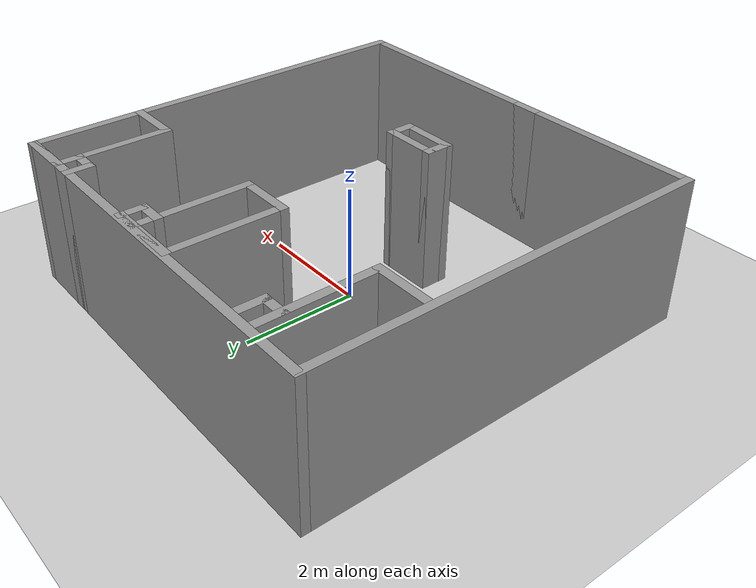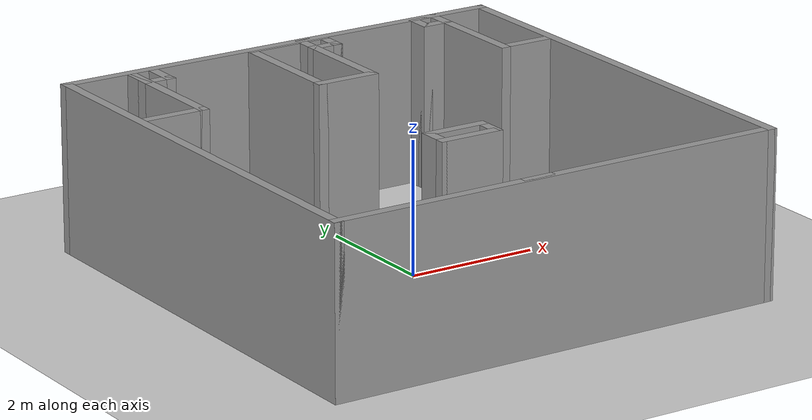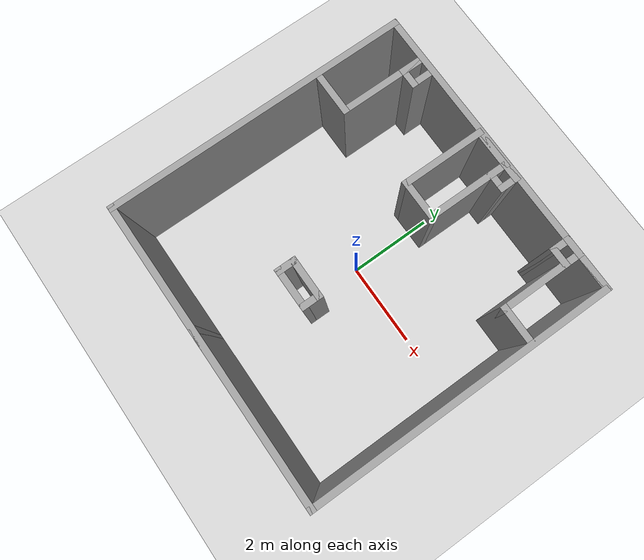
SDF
<sdf version="1.7">
 <world name="default">
  <light name="sun" type="directional">
   <pose>0 0 10 0 -0 0</pose>
   <diffuse>0.8 0.8 0.8 1</diffuse>
   <specular>0.2 0.2 0.2 1</specular>
   <attenuation>
    <range>1000</range>
    <constant>0.9</constant>
    <linear>0.01</linear>
    <quadratic>0.001</quadratic>
   </attenuation>
   <direction>-0.5 0.1 -0.9</direction>
   <spot><inner_angle>0</inner_angle><outer_angle>0</outer_angle><falloff>0</falloff></spot>
  </light>
  <model name="ground_plane">
   <static>1</static>
   <link name="link">
    <collision name="collision">
     <geometry><plane><normal>0 0 1</normal><size>100 100</size></plane></geometry>
     <surface><friction><ode><mu>100</mu><mu2>50</mu2></ode></friction></surface>
    </collision>
    <visual name="visual">
     <cast_shadows>0</cast_shadows>
     <geometry><plane><normal>0 0 1</normal><size>100 100</size></plane></geometry>
     <material>
      <script><uri>file://media/materials/scripts/gazebo.material</uri><name>Gazebo/Grey</name></script>
     </material>
    </visual>
   </link>
  </model>
  <gravity>0 0 -9.8</gravity>
  <magnetic_field>6e-06 2.3e-05 -4.2e-05</magnetic_field>
  <atmosphere type="adiabatic"/>
  <physics type="ode">
   <max_step_size>0.001</max_step_size>
   <real_time_factor>1</real_time_factor>
   <real_time_update_rate>1000</real_time_update_rate>
  </physics>
  <scene><ambient>0.4 0.4 0.4 1</ambient><background>0.7 0.7 0.7 1</background><shadows>1</shadows></scene>
  <audio><device>default</device></audio>
  <spherical_coordinates>
   <surface_model>EARTH_WGS84</surface_model>
   <latitude_deg>0</latitude_deg>
   <longitude_deg>0</longitude_deg>
   <elevation>0</elevation>
   <heading_deg>0</heading_deg>
  </spherical_coordinates>
  <model name="map2">
   <link name="Wall_0">
    <collision name="Wall_0_Collision">
     <geometry><box><size>7.15 0.15 2.5</size></box></geometry>
     <pose>0 0 1.25 0 -0 0</pose>
    </collision>
    <visual name="Wall_0_Visual">
     <pose>0 0 1.25 0 -0 0</pose>
     <geometry><box><size>7.15 0.15 2.5</size></box></geometry>
     <material>
      <script><uri>file://media/materials/scripts/gazebo.material</uri><name>Gazebo/Grey</name></script>
      <ambient>1 1 1 1</ambient>
     </material>
     <meta><layer>0</layer></meta>
    </visual>
    <pose>0 -3.5 0 0 -0 0</pose>
   </link>
   <link name="Wall_1">
    <collision name="Wall_1_Collision">
     <geometry><box><size>7.15 0.15 2.5</size></box></geometry>
     <pose>0 0 1.25 0 -0 0</pose>
    </collision>
    <visual name="Wall_1_Visual">
     <pose>0 0 1.25 0 -0 0</pose>
     <geometry><box><size>7.15 0.15 2.5</size></box></geometry>
     <material>
      <script><uri>file://media/materials/scripts/gazebo.material</uri><name>Gazebo/Grey</name></script>
      <ambient>1 1 1 1</ambient>
     </material>
     <meta><layer>0</layer></meta>
    </visual>
    <pose>3.5 0 0 0 -0 1.5708</pose>
   </link>
   <link name="Wall_13">
    <collision name="Wall_13_Collision">
     <geometry><box><size>2 0.15 2.5</size></box></geometry>
     <pose>0 0 1.25 0 -0 0</pose>
    </collision>
    <visual name="Wall_13_Visual">
     <pose>0 0 1.25 0 -0 0</pose>
     <geometry><box><size>2 0.15 2.5</size></box></geometry>
     <material>
      <script><uri>file://media/materials/scripts/gazebo.material</uri><name>Gazebo/Grey</name></script>
      <ambient>1 1 1 1</ambient>
     </material>
     <meta><layer>0</layer></meta>
    </visual>
    <pose>-2.5 2.425 0 0 -0 1.5708</pose>
   </link>
   <link name="Wall_15">
    <collision name="Wall_15_Collision">
     <geometry><box><size>0.5 0.15 2.5</size></box></geometry>
     <pose>0 0 1.25 0 -0 0</pose>
    </collision>
    <visual name="Wall_15_Visual">
     <pose>0 0 1.25 0 -0 0</pose>
     <geometry><box><size>0.5 0.15 2.5</size></box></geometry>
     <material>
      <script><uri>file://media/materials/scripts/gazebo.material</uri><name>Gazebo/Grey</name></script>
      <ambient>1 1 1 1</ambient>
     </material>
     <meta><layer>0</layer></meta>
    </visual>
    <pose>-2.5 3.175 0 0 -0 -1.5708</pose>
   </link>
   <link name="Wall_16">
    <collision name="Wall_16_Collision">
     <geometry><box><size>0.5 0.15 2.5</size></box></geometry>
     <pose>0 0 1.25 0 -0 0</pose>
    </collision>
    <visual name="Wall_16_Visual">
     <pose>0 0 1.25 0 -0 0</pose>
     <geometry><box><size>0.5 0.15 2.5</size></box></geometry>
     <material>
      <script><uri>file://media/materials/scripts/gazebo.material</uri><name>Gazebo/Grey</name></script>
      <ambient>1 1 1 1</ambient>
     </material>
     <meta><layer>0</layer></meta>
    </visual>
    <pose>-2.325 3 0 0 -0 0</pose>
   </link>
   <link name="Wall_17">
    <collision name="Wall_17_Collision">
     <geometry><box><size>0.5 0.15 2.5</size></box></geometry>
     <pose>0 0 1.25 0 -0 0</pose>
    </collision>
    <visual name="Wall_17_Visual">
     <pose>0 0 1.25 0 -0 0</pose>
     <geometry><box><size>0.5 0.15 2.5</size></box></geometry>
     <material>
      <script><uri>file://media/materials/scripts/gazebo.material</uri><name>Gazebo/Grey</name></script>
      <ambient>1 1 1 1</ambient>
     </material>
     <meta><layer>0</layer></meta>
    </visual>
    <pose>-2.15 3.175 0 0 -0 1.5708</pose>
   </link>
   <link name="Wall_2">
    <collision name="Wall_2_Collision">
     <geometry><box><size>7.15 0.15 2.5</size></box></geometry>
     <pose>0 0 1.25 0 -0 0</pose>
    </collision>
    <visual name="Wall_2_Visual">
     <pose>0 0 1.25 0 -0 0</pose>
     <geometry><box><size>7.15 0.15 2.5</size></box></geometry>
     <material>
      <script><uri>file://media/materials/scripts/gazebo.material</uri><name>Gazebo/Grey</name></script>
      <ambient>1 1 1 1</ambient>
     </material>
     <meta><layer>0</layer></meta>
    </visual>
    <pose>0 3.5 0 0 -0 3.14159</pose>
   </link>
   <link name="Wall_20">
    <collision name="Wall_20_Collision">
     <geometry><box><size>0.5 0.15 2.5</size></box></geometry>
     <pose>0 0 1.25 0 -0 0</pose>
    </collision>
    <visual name="Wall_20_Visual">
     <pose>0 0 1.25 0 -0 0</pose>
     <geometry><box><size>0.5 0.15 2.5</size></box></geometry>
     <material>
      <script><uri>file://media/materials/scripts/gazebo.material</uri><name>Gazebo/Grey</name></script>
      <ambient>1 1 1 1</ambient>
     </material>
     <meta><layer>0</layer></meta>
    </visual>
    <pose>-0.325 -3.5 0 0 -0 3.14159</pose>
   </link>
   <link name="Wall_22">
    <collision name="Wall_22_Collision">
     <geometry><box><size>1 0.15 2.5</size></box></geometry>
     <pose>0 0 1.25 0 -0 0</pose>
    </collision>
    <visual name="Wall_22_Visual">
     <pose>0 0 1.25 0 -0 0</pose>
     <geometry><box><size>1 0.15 2.5</size></box></geometry>
     <material>
      <script><uri>file://media/materials/scripts/gazebo.material</uri><name>Gazebo/Grey</name></script>
      <ambient>1 1 1 1</ambient>
     </material>
     <meta><layer>0</layer></meta>
    </visual>
    <pose>-0.075 -1.15 0 0 -0 0</pose>
   </link>
   <link name="Wall_23">
    <collision name="Wall_23_Collision">
     <geometry><box><size>0.5 0.15 2.5</size></box></geometry>
     <pose>0 0 1.25 0 -0 0</pose>
    </collision>
    <visual name="Wall_23_Visual">
     <pose>0 0 1.25 0 -0 0</pose>
     <geometry><box><size>0.5 0.15 2.5</size></box></geometry>
     <material>
      <script><uri>file://media/materials/scripts/gazebo.material</uri><name>Gazebo/Grey</name></script>
      <ambient>1 1 1 1</ambient>
     </material>
     <meta><layer>0</layer></meta>
    </visual>
    <pose>0.35 -1.325 0 0 -0 -1.5708</pose>
   </link>
   <link name="Wall_24">
    <collision name="Wall_24_Collision">
     <geometry><box><size>1 0.15 2.5</size></box></geometry>
     <pose>0 0 1.25 0 -0 0</pose>
    </collision>
    <visual name="Wall_24_Visual">
     <pose>0 0 1.25 0 -0 0</pose>
     <geometry><box><size>1 0.15 2.5</size></box></geometry>
     <material>
      <script><uri>file://media/materials/scripts/gazebo.material</uri><name>Gazebo/Grey</name></script>
      <ambient>1 1 1 1</ambient>
     </material>
     <meta><layer>0</layer></meta>
    </visual>
    <pose>-0.075 -1.5 0 0 -0 3.14159</pose>
   </link>
   <link name="Wall_25">
    <collision name="Wall_25_Collision">
     <geometry><box><size>0.5 0.15 2.5</size></box></geometry>
     <pose>0 0 1.25 0 -0 0</pose>
    </collision>
    <visual name="Wall_25_Visual">
     <pose>0 0 1.25 0 -0 0</pose>
     <geometry><box><size>0.5 0.15 2.5</size></box></geometry>
     <material>
      <script><uri>file://media/materials/scripts/gazebo.material</uri><name>Gazebo/Grey</name></script>
      <ambient>1 1 1 1</ambient>
     </material>
     <meta><layer>0</layer></meta>
    </visual>
    <pose>-0.5 -1.325 0 0 -0 1.5708</pose>
   </link>
   <link name="Wall_3">
    <collision name="Wall_3_Collision">
     <geometry><box><size>7.15 0.15 2.5</size></box></geometry>
     <pose>0 0 1.25 0 -0 0</pose>
    </collision>
    <visual name="Wall_3_Visual">
     <pose>0 0 1.25 0 -0 0</pose>
     <geometry><box><size>7.15 0.15 2.5</size></box></geometry>
     <material>
      <script><uri>file://media/materials/scripts/gazebo.material</uri><name>Gazebo/Grey</name></script>
      <ambient>1 1 1 1</ambient>
     </material>
     <meta><layer>0</layer></meta>
    </visual>
    <pose>-3.5 0 0 0 -0 -1.5708</pose>
   </link>
   <link name="Wall_35">
    <collision name="Wall_35_Collision">
     <geometry><box><size>1 0.15 2.5</size></box></geometry>
     <pose>0 0 1.25 0 -0 0</pose>
    </collision>
    <visual name="Wall_35_Visual">
     <pose>0 0 1.25 0 -0 0</pose>
     <geometry><box><size>1 0.15 2.5</size></box></geometry>
     <material>
      <script><uri>file://media/materials/scripts/gazebo.material</uri><name>Gazebo/Grey</name></script>
      <ambient>1 1 1 1</ambient>
     </material>
     <meta><layer>0</layer></meta>
    </visual>
    <pose>-0.075 3.45 0 0 -0 0</pose>
   </link>
   <link name="Wall_36">
    <collision name="Wall_36_Collision">
     <geometry><box><size>2 0.15 2.5</size></box></geometry>
     <pose>0 0 1.25 0 -0 0</pose>
    </collision>
    <visual name="Wall_36_Visual">
     <pose>0 0 1.25 0 -0 0</pose>
     <geometry><box><size>2 0.15 2.5</size></box></geometry>
     <material>
      <script><uri>file://media/materials/scripts/gazebo.material</uri><name>Gazebo/Grey</name></script>
      <ambient>1 1 1 1</ambient>
     </material>
     <meta><layer>0</layer></meta>
    </visual>
    <pose>0.35 2.525 0 0 -0 -1.5708</pose>
   </link>
   <link name="Wall_37">
    <collision name="Wall_37_Collision">
     <geometry><box><size>1 0.15 2.5</size></box></geometry>
     <pose>0 0 1.25 0 -0 0</pose>
    </collision>
    <visual name="Wall_37_Visual">
     <pose>0 0 1.25 0 -0 0</pose>
     <geometry><box><size>1 0.15 2.5</size></box></geometry>
     <material>
      <script><uri>file://media/materials/scripts/gazebo.material</uri><name>Gazebo/Grey</name></script>
      <ambient>1 1 1 1</ambient>
     </material>
     <meta><layer>0</layer></meta>
    </visual>
    <pose>-0.075 1.6 0 0 -0 3.14159</pose>
   </link>
   <link name="Wall_38">
    <collision name="Wall_38_Collision">
     <geometry><box><size>2 0.15 2.5</size></box></geometry>
     <pose>0 0 1.25 0 -0 0</pose>
    </collision>
    <visual name="Wall_38_Visual">
     <pose>0 0 1.25 0 -0 0</pose>
     <geometry><box><size>2 0.15 2.5</size></box></geometry>
     <material>
      <script><uri>file://media/materials/scripts/gazebo.material</uri><name>Gazebo/Grey</name></script>
      <ambient>1 1 1 1</ambient>
     </material>
     <meta><layer>0</layer></meta>
    </visual>
    <pose>-0.5 2.525 0 0 -0 1.5708</pose>
   </link>
   <link name="Wall_40">
    <collision name="Wall_40_Collision">
     <geometry><box><size>0.5 0.15 2.5</size></box></geometry>
     <pose>0 0 1.25 0 -0 0</pose>
    </collision>
    <visual name="Wall_40_Visual">
     <pose>0 0 1.25 0 -0 0</pose>
     <geometry><box><size>0.5 0.15 2.5</size></box></geometry>
     <material>
      <script><uri>file://media/materials/scripts/gazebo.material</uri><name>Gazebo/Grey</name></script>
      <ambient>1 1 1 1</ambient>
     </material>
     <meta><layer>0</layer></meta>
    </visual>
    <pose>0.525 3.45 0 0 -0 0</pose>
   </link>
   <link name="Wall_41">
    <collision name="Wall_41_Collision">
     <geometry><box><size>0.5 0.15 2.5</size></box></geometry>
     <pose>0 0 1.25 0 -0 0</pose>
    </collision>
    <visual name="Wall_41_Visual">
     <pose>0 0 1.25 0 -0 0</pose>
     <geometry><box><size>0.5 0.15 2.5</size></box></geometry>
     <material>
      <script><uri>file://media/materials/scripts/gazebo.material</uri><name>Gazebo/Grey</name></script>
      <ambient>1 1 1 1</ambient>
     </material>
     <meta><layer>0</layer></meta>
    </visual>
    <pose>0.7 3.275 0 0 -0 -1.5708</pose>
   </link>
   <link name="Wall_42">
    <collision name="Wall_42_Collision">
     <geometry><box><size>0.5 0.15 2.5</size></box></geometry>
     <pose>0 0 1.25 0 -0 0</pose>
    </collision>
    <visual name="Wall_42_Visual">
     <pose>0 0 1.25 0 -0 0</pose>
     <geometry><box><size>0.5 0.15 2.5</size></box></geometry>
     <material>
      <script><uri>file://media/materials/scripts/gazebo.material</uri><name>Gazebo/Grey</name></script>
      <ambient>1 1 1 1</ambient>
     </material>
     <meta><layer>0</layer></meta>
    </visual>
    <pose>0.525 3.1 0 0 -0 3.14159</pose>
   </link>
   <link name="Wall_44">
    <collision name="Wall_44_Collision">
     <geometry><box><size>1 0.15 2.5</size></box></geometry>
     <pose>0 0 1.25 0 -0 0</pose>
    </collision>
    <visual name="Wall_44_Visual">
     <pose>0 0 1.25 0 -0 0</pose>
     <geometry><box><size>1 0.15 2.5</size></box></geometry>
     <material>
      <script><uri>file://media/materials/scripts/gazebo.material</uri><name>Gazebo/Grey</name></script>
      <ambient>1 1 1 1</ambient>
     </material>
     <meta><layer>0</layer></meta>
    </visual>
    <pose>3.075 3.5 0 0 -0 3.14159</pose>
   </link>
   <link name="Wall_45">
    <collision name="Wall_45_Collision">
     <geometry><box><size>2 0.15 2.5</size></box></geometry>
     <pose>0 0 1.25 0 -0 0</pose>
    </collision>
    <visual name="Wall_45_Visual">
     <pose>0 0 1.25 0 -0 0</pose>
     <geometry><box><size>2 0.15 2.5</size></box></geometry>
     <material>
      <script><uri>file://media/materials/scripts/gazebo.material</uri><name>Gazebo/Grey</name></script>
      <ambient>1 1 1 1</ambient>
     </material>
     <meta><layer>0</layer></meta>
    </visual>
    <pose>2.65 2.575 0 0 -0 -1.5708</pose>
   </link>
   <link name="Wall_46">
    <collision name="Wall_46_Collision">
     <geometry><box><size>1 0.15 2.5</size></box></geometry>
     <pose>0 0 1.25 0 -0 0</pose>
    </collision>
    <visual name="Wall_46_Visual">
     <pose>0 0 1.25 0 -0 0</pose>
     <geometry><box><size>1 0.15 2.5</size></box></geometry>
     <material>
      <script><uri>file://media/materials/scripts/gazebo.material</uri><name>Gazebo/Grey</name></script>
      <ambient>1 1 1 1</ambient>
     </material>
     <meta><layer>0</layer></meta>
    </visual>
    <pose>3.075 1.65 0 0 -0 0</pose>
   </link>
   <link name="Wall_48">
    <collision name="Wall_48_Collision">
     <geometry><box><size>0.5 0.15 2.5</size></box></geometry>
     <pose>0 0 1.25 0 -0 0</pose>
    </collision>
    <visual name="Wall_48_Visual">
     <pose>0 0 1.25 0 -0 0</pose>
     <geometry><box><size>0.5 0.15 2.5</size></box></geometry>
     <material>
      <script><uri>file://media/materials/scripts/gazebo.material</uri><name>Gazebo/Grey</name></script>
      <ambient>1 1 1 1</ambient>
     </material>
     <meta><layer>0</layer></meta>
    </visual>
    <pose>2.475 3.5 0 0 -0 3.14159</pose>
   </link>
   <link name="Wall_49">
    <collision name="Wall_49_Collision">
     <geometry><box><size>0.5 0.15 2.5</size></box></geometry>
     <pose>0 0 1.25 0 -0 0</pose>
    </collision>
    <visual name="Wall_49_Visual">
     <pose>0 0 1.25 0 -0 0</pose>
     <geometry><box><size>0.5 0.15 2.5</size></box></geometry>
     <material>
      <script><uri>file://media/materials/scripts/gazebo.material</uri><name>Gazebo/Grey</name></script>
      <ambient>1 1 1 1</ambient>
     </material>
     <meta><layer>0</layer></meta>
    </visual>
    <pose>2.3 3.325 0 0 -0 -1.5708</pose>
   </link>
   <link name="Wall_50">
    <collision name="Wall_50_Collision">
     <geometry><box><size>0.5 0.15 2.5</size></box></geometry>
     <pose>0 0 1.25 0 -0 0</pose>
    </collision>
    <visual name="Wall_50_Visual">
     <pose>0 0 1.25 0 -0 0</pose>
     <geometry><box><size>0.5 0.15 2.5</size></box></geometry>
     <material>
      <script><uri>file://media/materials/scripts/gazebo.material</uri><name>Gazebo/Grey</name></script>
      <ambient>1 1 1 1</ambient>
     </material>
     <meta><layer>0</layer></meta>
    </visual>
    <pose>2.475 3.15 0 0 -0 0</pose>
   </link>
   <link name="Wall_7">
    <collision name="Wall_7_Collision">
     <geometry><box><size>1 0.15 2.5</size></box></geometry>
     <pose>0 0 1.25 0 -0 0</pose>
    </collision>
    <visual name="Wall_7_Visual">
     <pose>0 0 1.25 0 -0 0</pose>
     <geometry><box><size>1 0.15 2.5</size></box></geometry>
     <material>
      <script><uri>file://media/materials/scripts/gazebo.material</uri><name>Gazebo/Grey</name></script>
      <ambient>1 1 1 1</ambient>
     </material>
     <meta><layer>0</layer></meta>
    </visual>
    <pose>-2.925 1.5 0 0 -0 3.14159</pose>
   </link>
   <static>1</static>
  </model>
 </world>
</sdf>
